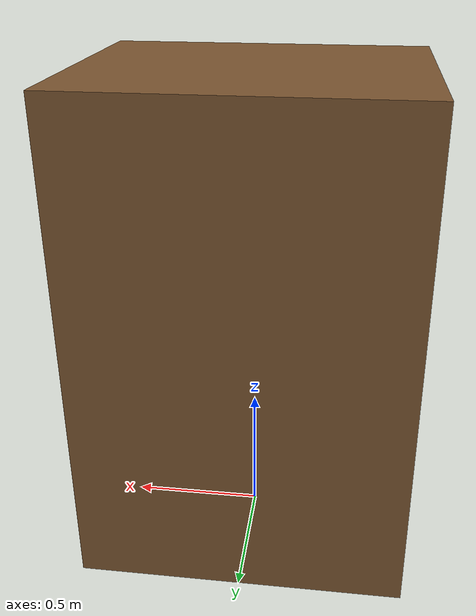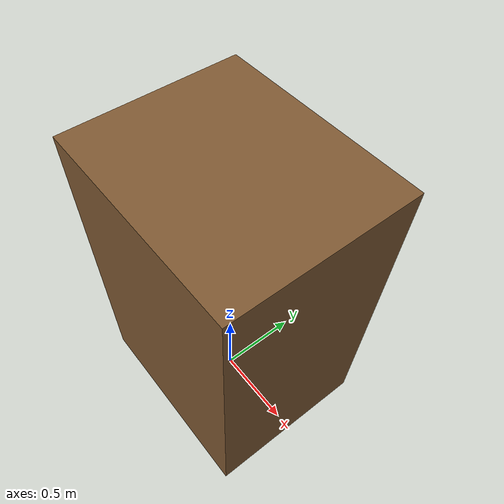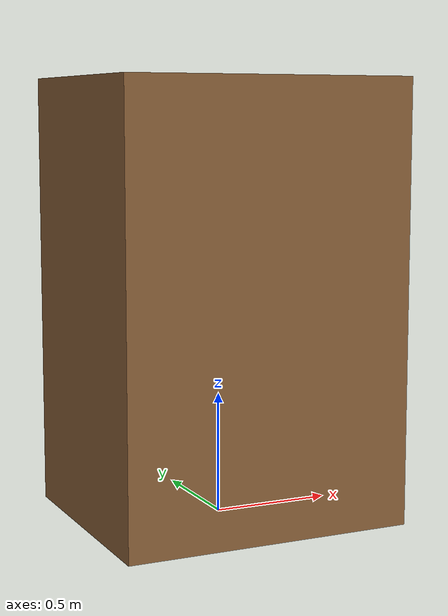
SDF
<?xml version="1.0"?>
<!--
  Warehouse Shelf Model
  Dimensions: 1.2m x 1.0m x 1.8m
-->
<sdf version="1.8">
<model name="shelf">
  <static>true</static>
  <link name="shelf_link">
    <pose>0 0 0.9 0 0 0</pose>
    <collision name="collision">
      <geometry><box><size>1.2 1.0 1.8</size></box></geometry>
    </collision>
    <visual name="visual">
      <geometry><box><size>1.2 1.0 1.8</size></box></geometry>
      <material>
        <ambient>0.5 0.35 0.2 1.0</ambient>
        <diffuse>0.5 0.35 0.2 1.0</diffuse>
      </material>
    </visual>
  </link>
</model>
</sdf>
